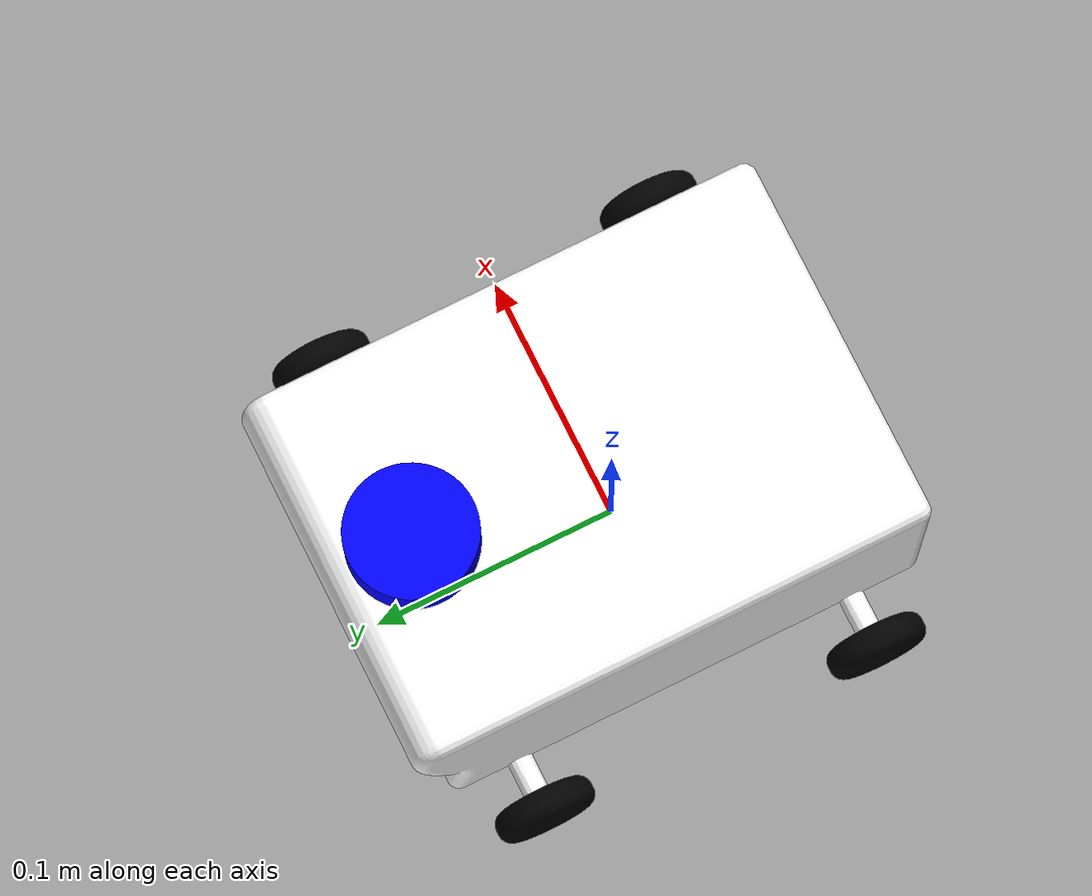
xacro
<?xml version="1.0" ?>
<robot name="pharma2" xmlns:xacro="http://www.ros.org/wiki/xacro">

<xacro:include filename="$(find pharma2_description)/urdf/materials.xacro" />
<xacro:include filename="$(find pharma2_description)/urdf/pharma2.trans" />
<xacro:include filename="$(find pharma2_description)/urdf/pharma2.gazebo" />
<link name="base_link">
  <inertial>
    <origin xyz="1.754420455030862e-10 0.006871969569382918 0.07408233461912865" rpy="0 0 0"/>
    <mass value="23.773820497400024"/>
    <inertia ixx="0.100968" iyy="0.064395" izz="0.125597" ixy="-0.0" iyz="-0.001996" ixz="0.0"/>
  </inertial>
  <visual>
    <origin xyz="0 0 0" rpy="0 0 0"/>
    <geometry>
      <mesh filename="package://pharma2_description/meshes/base_link.stl" scale="0.001 0.001 0.001"/>
    </geometry>
    <material name="white"/>
  </visual>
  <collision>
    <origin xyz="0 0 0" rpy="0 0 0"/>
    <geometry>
      <mesh filename="package://pharma2_description/meshes/base_link.stl" scale="0.001 0.001 0.001"/>
    </geometry>
  </collision>
</link>

<link name="left_front_1">
  <inertial>
    <origin xyz="0.006000000000000005 1.0358413515820786e-07 2.2863054563448948e-07" rpy="0 0 0"/>
    <mass value="0.10838148045272696"/>
    <inertia ixx="2e-05" iyy="1.1e-05" izz="1.1e-05" ixy="-0.0" iyz="-0.0" ixz="0.0"/>
  </inertial>
  <visual>
    <origin xyz="-0.09 -0.07571 -0.028299" rpy="0 0 0"/>
    <geometry>
      <mesh filename="package://pharma2_description/meshes/left_front_1.stl" scale="0.001 0.001 0.001"/>
    </geometry>
    <material name="black"/>
  </visual>
  <collision>
    <origin xyz="-0.09 -0.07571 -0.028299" rpy="0 0 0"/>
    <geometry>
      <mesh filename="package://pharma2_description/meshes/left_front_1.stl" scale="0.001 0.001 0.001"/>
    </geometry>
  </collision>
</link>

<link name="right_front_1">
  <inertial>
    <origin xyz="-0.006000000000000005 1.0358413517208565e-07 2.2863054563448948e-07" rpy="0 0 0"/>
    <mass value="0.10838148045272698"/>
    <inertia ixx="2e-05" iyy="1.1e-05" izz="1.1e-05" ixy="-0.0" iyz="-0.0" ixz="-0.0"/>
  </inertial>
  <visual>
    <origin xyz="0.09 -0.07571 -0.028299" rpy="0 0 0"/>
    <geometry>
      <mesh filename="package://pharma2_description/meshes/right_front_1.stl" scale="0.001 0.001 0.001"/>
    </geometry>
    <material name="black"/>
  </visual>
  <collision>
    <origin xyz="0.09 -0.07571 -0.028299" rpy="0 0 0"/>
    <geometry>
      <mesh filename="package://pharma2_description/meshes/right_front_1.stl" scale="0.001 0.001 0.001"/>
    </geometry>
  </collision>
</link>

<link name="left_back_1">
  <inertial>
    <origin xyz="0.006000000000000005 1.0358413514433007e-07 2.286305456657145e-07" rpy="0 0 0"/>
    <mass value="0.10838148045272723"/>
    <inertia ixx="2e-05" iyy="1.1e-05" izz="1.1e-05" ixy="-0.0" iyz="-0.0" ixz="0.0"/>
  </inertial>
  <visual>
    <origin xyz="-0.09 0.06429 -0.028299" rpy="0 0 0"/>
    <geometry>
      <mesh filename="package://pharma2_description/meshes/left_back_1.stl" scale="0.001 0.001 0.001"/>
    </geometry>
    <material name="black"/>
  </visual>
  <collision>
    <origin xyz="-0.09 0.06429 -0.028299" rpy="0 0 0"/>
    <geometry>
      <mesh filename="package://pharma2_description/meshes/left_back_1.stl" scale="0.001 0.001 0.001"/>
    </geometry>
  </collision>
</link>

<link name="right_back_1">
  <inertial>
    <origin xyz="-0.006000000000000005 1.0358413515820786e-07 2.2863054566224505e-07" rpy="0 0 0"/>
    <mass value="0.10838148045272696"/>
    <inertia ixx="2e-05" iyy="1.1e-05" izz="1.1e-05" ixy="0.0" iyz="-0.0" ixz="0.0"/>
  </inertial>
  <visual>
    <origin xyz="0.09 0.06429 -0.028299" rpy="0 0 0"/>
    <geometry>
      <mesh filename="package://pharma2_description/meshes/right_back_1.stl" scale="0.001 0.001 0.001"/>
    </geometry>
    <material name="black"/>
  </visual>
  <collision>
    <origin xyz="0.09 0.06429 -0.028299" rpy="0 0 0"/>
    <geometry>
      <mesh filename="package://pharma2_description/meshes/right_back_1.stl" scale="0.001 0.001 0.001"/>
    </geometry>
  </collision>
</link>

<link name="lidar_1_1">
  <inertial>
    <origin xyz="-3.618764437576268e-18 1.0358413515820786e-07 0.010000228630545671" rpy="0 0 0"/>
    <mass value="0.3082687791334984"/>
    <inertia ixx="5.8e-05" iyy="5.8e-05" izz="9.6e-05" ixy="-0.0" iyz="-0.0" ixz="-0.0"/>
  </inertial>
  <visual>
    <origin xyz="-0.0 -0.08071 -0.128299" rpy="0 0 0"/>
    <geometry>
      <mesh filename="package://pharma2_description/meshes/lidar_1_1.stl" scale="0.001 0.001 0.001"/>
    </geometry>
    <material name="blue"/>
  </visual>
  <collision>
    <origin xyz="-0.0 -0.08071 -0.128299" rpy="0 0 0"/>
    <geometry>
      <mesh filename="package://pharma2_description/meshes/lidar_1_1.stl" scale="0.001 0.001 0.001"/>
    </geometry>
  </collision>
</link>

<joint name="Rev1" type="continuous">
  <origin xyz="0.09 0.07571 0.028299" rpy="0 0 0"/>
  <parent link="base_link"/>
  <child link="left_front_1"/>
  <axis xyz="1.0 -0.0 0.0"/>
</joint>

<joint name="Rev2" type="continuous">
  <origin xyz="-0.09 0.07571 0.028299" rpy="0 0 0"/>
  <parent link="base_link"/>
  <child link="right_front_1"/>
  <axis xyz="-1.0 -0.0 0.0"/>
</joint>

<joint name="Rev3" type="continuous">
  <origin xyz="0.09 -0.06429 0.028299" rpy="0 0 0"/>
  <parent link="base_link"/>
  <child link="left_back_1"/>
  <axis xyz="1.0 -0.0 0.0"/>
</joint>

<joint name="Rev4" type="continuous">
  <origin xyz="-0.09 -0.06429 0.028299" rpy="0 0 0"/>
  <parent link="base_link"/>
  <child link="right_back_1"/>
  <axis xyz="-1.0 -0.0 0.0"/>
</joint>

<joint name="Rigid5" type="fixed">
  <origin xyz="0.0 0.08071 0.128299" rpy="0 0 0"/>
  <parent link="base_link"/>
  <child link="lidar_1_1"/>
</joint>

</robot>

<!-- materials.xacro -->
<robot name="pharma2" xmlns:xacro="http://www.ros.org/wiki/xacro" >

<material name="white">
  <color rgba="01.00 01.00 01.00 1.000"/>
</material>

<material name="blue">
  <color rgba="00.00 00.00 01.00 1.000"/>
</material>

<material name="black">
  <color rgba="00.00 00.00 00.00 1.000"/>
</material>

</robot>

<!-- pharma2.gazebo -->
<robot name="pharma2" xmlns:xacro="http://www.ros.org/wiki/xacro" >

<xacro:property name="body_color" value="Gazebo/Red" />
<xacro:property name="block_color" value="Gazebo/Black" />
<xacro:property name="blue_color" value="Gazebo/Blue" />

<gazebo>
  <plugin name="control" filename="libgazebo_ros_control.so"/>
</gazebo>
<gazebo reference="base_link">
  <material>${body_color}</material>
  <mu1>0.2</mu1>
  <mu2>0.2</mu2>
  <selfCollide>true</selfCollide>
  <gravity>true</gravity>
</gazebo>

<gazebo reference="left_front_1">
  <material>${block_color}</material>
  <mu1>0.2</mu1>
  <mu2>0.2</mu2>
  <selfCollide>true</selfCollide>
</gazebo>

<gazebo reference="right_front_1">
  <material>${block_color}</material>
  <mu1>0.2</mu1>
  <mu2>0.2</mu2>
  <selfCollide>true</selfCollide>
</gazebo>

<gazebo reference="left_back_1">
  <material>${block_color}</material>
  <mu1>0.2</mu1>
  <mu2>0.2</mu2>
  <selfCollide>true</selfCollide>
</gazebo>

<gazebo reference="right_back_1">
  <material>${block_color}</material>
  <mu1>0.2</mu1>
  <mu2>0.2</mu2>
  <selfCollide>true</selfCollide>
</gazebo>

<gazebo reference="lidar_1_1">
  <material>${blue_color}</material>
  <mu1>0.2</mu1>
  <mu2>0.2</mu2>
  <selfCollide>true</selfCollide>
</gazebo>
<gazebo>
  <plugin name="differential_drive_controller" filename="libgazebo_ros_diff_drive.so">

    <!-- Plugin update rate in Hz -->
    <updateRate>100</updateRate>

    <!-- Name of left joint, defaults to `left_joint` -->
    <leftJoint>Rev1</leftJoint>

    <!-- Name of right joint, defaults to `right_joint` -->
    <rightJoint>Rev2</rightJoint>

    <!-- Name of left joint, defaults to `left_joint` -->
    <leftJoint>Rev3</leftJoint>

    <!-- Name of right joint, defaults to `right_joint` -->
    <rightJoint>Rev4</rightJoint>

    <!-- The distance from the center of one wheel to the other, in meters, defaults to 0.34 m -->
    <wheelSeparation>0.015</wheelSeparation>

    <!-- Diameter of the wheels, in meters, defaults to 0.15 m -->
    <wheelDiameter>0.2410</wheelDiameter>

    <!-- Wheel acceleration, in rad/s^2, defaults to 0.0 rad/s^2 -->
    <wheelAcceleration>1.0</wheelAcceleration>

    <!-- Maximum torque which the wheels can produce, in Nm, defaults to 5 Nm -->
    <wheelTorque>20</wheelTorque>

    <!-- Topic to receive geometry_msgs/Twist message commands, defaults to `cmd_vel` -->
    <commandTopic>cmd_vel</commandTopic>

    <!-- Topic to publish nav_msgs/Odometry messages, defaults to `odom` -->
    <odometryTopic>odom</odometryTopic>

    <!-- Odometry frame, defaults to `odom` -->
    <odometryFrame>odom</odometryFrame>

    <!-- Robot frame to calculate odometry from, defaults to `base_footprint` -->
    <robotBaseFrame>base_link</robotBaseFrame>

    <!-- Odometry source, 0 for ENCODER, 1 for WORLD, defaults to WORLD -->
    <odometrySource>1</odometrySource>

    <!-- Set to true to publish transforms for the wheel links, defaults to false -->
    <publishWheelTF>true</publishWheelTF>

    <!-- Set to true to publish transforms for the odometry, defaults to true -->
    <publishOdom>true</publishOdom>

    <!-- Set to true to publish sensor_msgs/JointState on /joint_states for the wheel joints, defaults to false -->
    <publishWheelJointState>true</publishWheelJointState>

    <!-- Set to true to swap right and left wheels, defaults to true -->
    <legacyMode>false</legacyMode>
  </plugin>
   <!-- hokuyo -->
  <gazebo reference="lidar_1_1">
    <sensor type="ray" name="head_hokuyo_sensor">
      <pose>0 0 0 0 0 0</pose>
      <visualize>true</visualize>
      <update_rate>40</update_rate>
      <ray>
        <scan>
          <horizontal>
            <samples>720</samples>
            <resolution>1</resolution>
            <min_angle>-1.570796</min_angle>
            <max_angle>1.570796</max_angle>
          </horizontal>
        </scan>
        <range>
          <min>0.10</min>
          <max>30.0</max>
          <resolution>0.01</resolution>
        </range>
        <noise>
          <type>gaussian</type>
          <mean>0.0</mean>
          <stddev>0.01</stddev>
        </noise>
      </ray>
      <plugin name="gazebo_ros_head_hokuyo_controller" filename="libgazebo_ros_gpu_laser.so">
        <topicName>/scan</topicName>
        <frameName>lidar_1_1</frameName>
      </plugin>
    </sensor>
  </gazebo>
</gazebo>

</robot>
